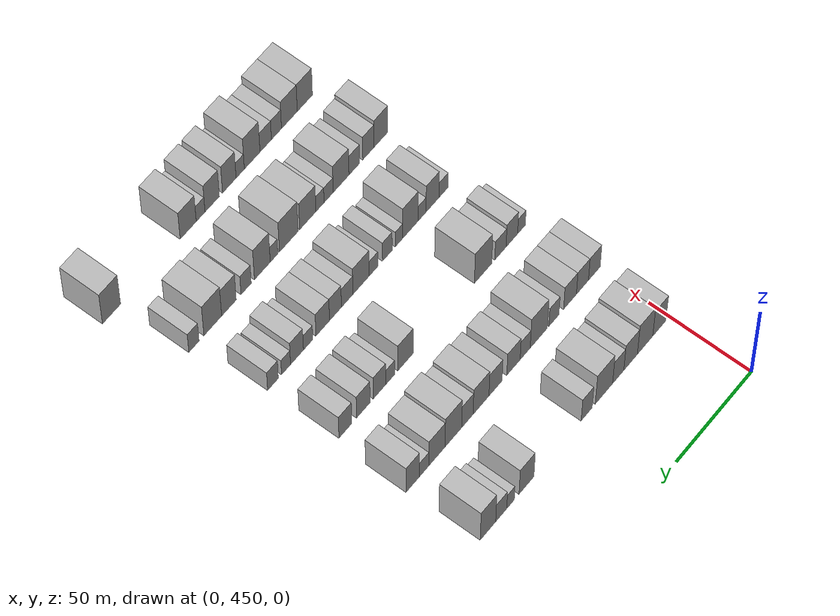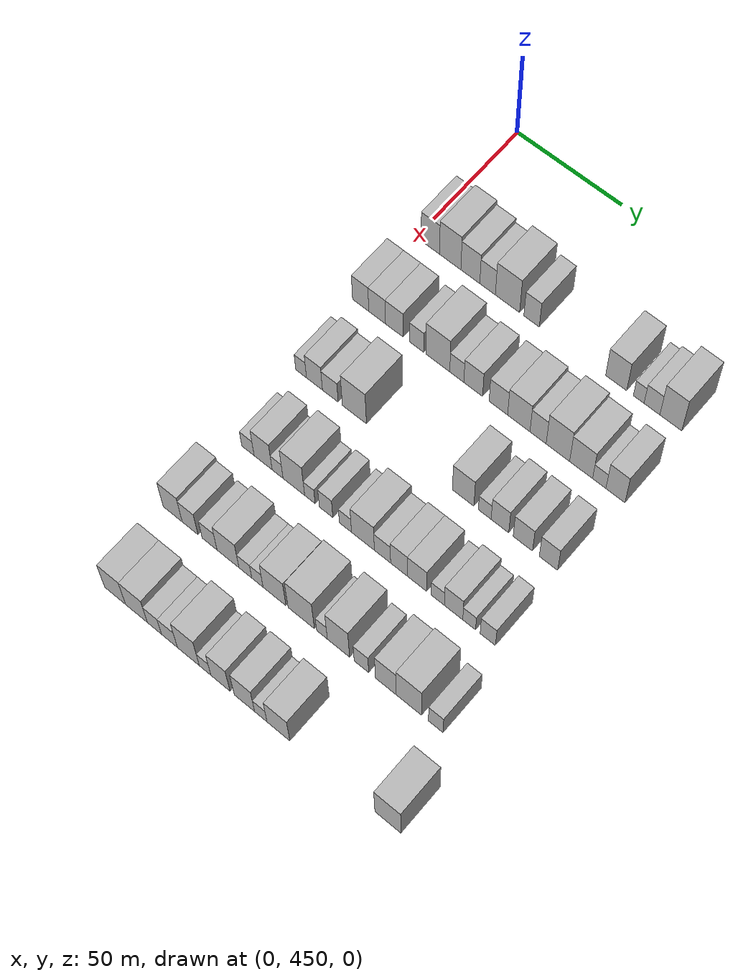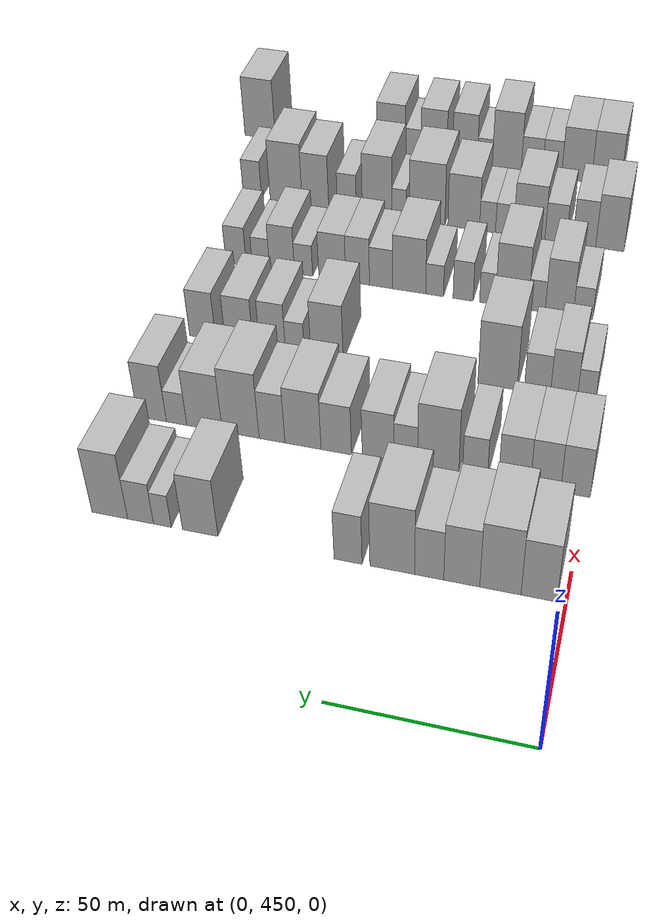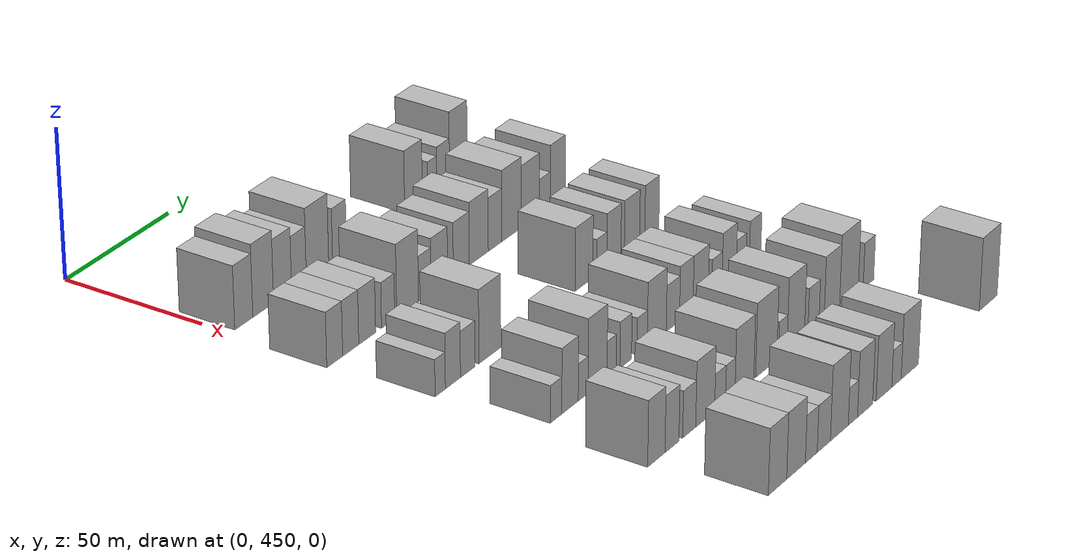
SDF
<sdf version="1.6">
 <world name="default">
  <model name="building_99">
   <static>1</static>
   <pose>50.0000 456.7760 0 0.000000 0.000000 0.000000</pose>
   <link name="link">
    <pose>0 0 10.50 0 0 0</pose>
    <collision name="collision"><geometry><box><size>20.0000 8.8065 21.0000</size></box></geometry></collision>
    <visual name="visual">
     <cast_shadows>0</cast_shadows>
     <geometry><box><size>20.0000 8.8065 21.0000</size></box></geometry>
     <material>
      <script>
       <uri>model://HANNAS_wall/materials/scripts</uri>
       <uri>model://HANNAS_wall/materials/textures</uri>
       <name>vrc/HANNAS_wall</name>
      </script>
     </material>
    </visual>
   </link>
  </model>
  <model name="building_100">
   <static>1</static>
   <pose>50.0000 466.2959 0 0.000000 0.000000 0.000000</pose>
   <link name="link">
    <pose>0 0 12.00 0 0 0</pose>
    <collision name="collision"><geometry><box><size>20.0000 10.2333 24.0000</size></box></geometry></collision>
    <visual name="visual">
     <cast_shadows>0</cast_shadows>
     <geometry><box><size>20.0000 10.2333 24.0000</size></box></geometry>
     <material>
      <script>
       <uri>model://HANNAS_wall/materials/scripts</uri>
       <uri>model://HANNAS_wall/materials/textures</uri>
       <name>vrc/HANNAS_wall</name>
      </script>
     </material>
    </visual>
   </link>
  </model>
  <model name="building_101">
   <static>1</static>
   <pose>50.0000 475.9107 0 0.000000 0.000000 0.000000</pose>
   <link name="link">
    <pose>0 0 10.50 0 0 0</pose>
    <collision name="collision"><geometry><box><size>20.0000 8.9962 21.0000</size></box></geometry></collision>
    <visual name="visual">
     <cast_shadows>0</cast_shadows>
     <geometry><box><size>20.0000 8.9962 21.0000</size></box></geometry>
     <material>
      <script>
       <uri>model://HANNAS_wall/materials/scripts</uri>
       <uri>model://HANNAS_wall/materials/textures</uri>
       <name>vrc/HANNAS_wall</name>
      </script>
     </material>
    </visual>
   </link>
  </model>
  <model name="building_102">
   <static>1</static>
   <pose>50.0000 484.0939 0 0.000000 0.000000 0.000000</pose>
   <link name="link">
    <pose>0 0 9.00 0 0 0</pose>
    <collision name="collision"><geometry><box><size>20.0000 7.3703 18.0000</size></box></geometry></collision>
    <visual name="visual">
     <cast_shadows>0</cast_shadows>
     <geometry><box><size>20.0000 7.3703 18.0000</size></box></geometry>
     <material>
      <script>
       <uri>model://HANNAS_wall/materials/scripts</uri>
       <uri>model://HANNAS_wall/materials/textures</uri>
       <name>vrc/HANNAS_wall</name>
      </script>
     </material>
    </visual>
   </link>
  </model>
  <model name="building_103">
   <static>1</static>
   <pose>50.0000 493.4817 0 0.000000 0.000000 0.000000</pose>
   <link name="link">
    <pose>0 0 12.00 0 0 0</pose>
    <collision name="collision"><geometry><box><size>20.0000 11.4052 24.0000</size></box></geometry></collision>
    <visual name="visual">
     <cast_shadows>0</cast_shadows>
     <geometry><box><size>20.0000 11.4052 24.0000</size></box></geometry>
     <material>
      <script>
       <uri>model://HANNAS_wall/materials/scripts</uri>
       <uri>model://HANNAS_wall/materials/textures</uri>
       <name>vrc/HANNAS_wall</name>
      </script>
     </material>
    </visual>
   </link>
  </model>
  <model name="building_104">
   <static>1</static>
   <pose>50.0000 504.7924 0 0.000000 0.000000 0.000000</pose>
   <link name="link">
    <pose>0 0 9.00 0 0 0</pose>
    <collision name="collision"><geometry><box><size>20.0000 7.2164 18.0000</size></box></geometry></collision>
    <visual name="visual">
     <cast_shadows>0</cast_shadows>
     <geometry><box><size>20.0000 7.2164 18.0000</size></box></geometry>
     <material>
      <script>
       <uri>model://HANNAS_wall/materials/scripts</uri>
       <uri>model://HANNAS_wall/materials/textures</uri>
       <name>vrc/HANNAS_wall</name>
      </script>
     </material>
    </visual>
   </link>
  </model>
  <model name="building_105">
   <static>1</static>
   <pose>50.0000 543.7644 0 0.000000 0.000000 0.000000</pose>
   <link name="link">
    <pose>0 0 10.50 0 0 0</pose>
    <collision name="collision"><geometry><box><size>20.0000 9.5758 21.0000</size></box></geometry></collision>
    <visual name="visual">
     <cast_shadows>0</cast_shadows>
     <geometry><box><size>20.0000 9.5758 21.0000</size></box></geometry>
     <material>
      <script>
       <uri>model://HANNAS_wall/materials/scripts</uri>
       <uri>model://HANNAS_wall/materials/textures</uri>
       <name>vrc/HANNAS_wall</name>
      </script>
     </material>
    </visual>
   </link>
  </model>
  <model name="building_106">
   <static>1</static>
   <pose>50.0000 553.9643 0 0.000000 0.000000 0.000000</pose>
   <link name="link">
    <pose>0 0 6.00 0 0 0</pose>
    <collision name="collision"><geometry><box><size>20.0000 4.8239 12.0000</size></box></geometry></collision>
    <visual name="visual">
     <cast_shadows>0</cast_shadows>
     <geometry><box><size>20.0000 4.8239 12.0000</size></box></geometry>
     <material>
      <script>
       <uri>model://HANNAS_wall/materials/scripts</uri>
       <uri>model://HANNAS_wall/materials/textures</uri>
       <name>vrc/HANNAS_wall</name>
      </script>
     </material>
    </visual>
   </link>
  </model>
  <model name="building_107">
   <static>1</static>
   <pose>50.0000 559.9140 0 0.000000 0.000000 0.000000</pose>
   <link name="link">
    <pose>0 0 7.50 0 0 0</pose>
    <collision name="collision"><geometry><box><size>20.0000 7.0755 15.0000</size></box></geometry></collision>
    <visual name="visual">
     <cast_shadows>0</cast_shadows>
     <geometry><box><size>20.0000 7.0755 15.0000</size></box></geometry>
     <material>
      <script>
       <uri>model://HANNAS_wall/materials/scripts</uri>
       <uri>model://HANNAS_wall/materials/textures</uri>
       <name>vrc/HANNAS_wall</name>
      </script>
     </material>
    </visual>
   </link>
  </model>
  <model name="building_108">
   <static>1</static>
   <pose>50.0000 568.3664 0 0.000000 0.000000 0.000000</pose>
   <link name="link">
    <pose>0 0 12.00 0 0 0</pose>
    <collision name="collision"><geometry><box><size>20.0000 9.8292 24.0000</size></box></geometry></collision>
    <visual name="visual">
     <cast_shadows>0</cast_shadows>
     <geometry><box><size>20.0000 9.8292 24.0000</size></box></geometry>
     <material>
      <script>
       <uri>model://HANNAS_wall/materials/scripts</uri>
       <uri>model://HANNAS_wall/materials/textures</uri>
       <name>vrc/HANNAS_wall</name>
      </script>
     </material>
    </visual>
   </link>
  </model>
  <model name="building_221">
   <static>1</static>
   <pose>85.0000 452.7552 0 0.000000 0.000000 0.000000</pose>
   <link name="link">
    <pose>0 0 9.00 0 0 0</pose>
    <collision name="collision"><geometry><box><size>20.0000 7.8220 18.0000</size></box></geometry></collision>
    <visual name="visual">
     <cast_shadows>0</cast_shadows>
     <geometry><box><size>20.0000 7.8220 18.0000</size></box></geometry>
     <material>
      <script>
       <uri>model://HANNAS_wall/materials/scripts</uri>
       <uri>model://HANNAS_wall/materials/textures</uri>
       <name>vrc/HANNAS_wall</name>
      </script>
     </material>
    </visual>
   </link>
  </model>
  <model name="building_222">
   <static>1</static>
   <pose>85.0000 460.6661 0 0.000000 0.000000 0.000000</pose>
   <link name="link">
    <pose>0 0 9.00 0 0 0</pose>
    <collision name="collision"><geometry><box><size>20.0000 7.9999 18.0000</size></box></geometry></collision>
    <visual name="visual">
     <cast_shadows>0</cast_shadows>
     <geometry><box><size>20.0000 7.9999 18.0000</size></box></geometry>
     <material>
      <script>
       <uri>model://HANNAS_wall/materials/scripts</uri>
       <uri>model://HANNAS_wall/materials/textures</uri>
       <name>vrc/HANNAS_wall</name>
      </script>
     </material>
    </visual>
   </link>
  </model>
  <model name="building_223">
   <static>1</static>
   <pose>85.0000 468.9051 0 0.000000 0.000000 0.000000</pose>
   <link name="link">
    <pose>0 0 9.00 0 0 0</pose>
    <collision name="collision"><geometry><box><size>20.0000 8.4780 18.0000</size></box></geometry></collision>
    <visual name="visual">
     <cast_shadows>0</cast_shadows>
     <geometry><box><size>20.0000 8.4780 18.0000</size></box></geometry>
     <material>
      <script>
       <uri>model://HANNAS_wall/materials/scripts</uri>
       <uri>model://HANNAS_wall/materials/textures</uri>
       <name>vrc/HANNAS_wall</name>
      </script>
     </material>
    </visual>
   </link>
  </model>
  <model name="building_224">
   <static>1</static>
   <pose>85.0000 479.5016 0 0.000000 0.000000 0.000000</pose>
   <link name="link">
    <pose>0 0 7.50 0 0 0</pose>
    <collision name="collision"><geometry><box><size>20.0000 6.7152 15.0000</size></box></geometry></collision>
    <visual name="visual">
     <cast_shadows>0</cast_shadows>
     <geometry><box><size>20.0000 6.7152 15.0000</size></box></geometry>
     <material>
      <script>
       <uri>model://HANNAS_wall/materials/scripts</uri>
       <uri>model://HANNAS_wall/materials/textures</uri>
       <name>vrc/HANNAS_wall</name>
      </script>
     </material>
    </visual>
   </link>
  </model>
  <model name="building_225">
   <static>1</static>
   <pose>85.0000 489.4619 0 0.000000 0.000000 0.000000</pose>
   <link name="link">
    <pose>0 0 12.00 0 0 0</pose>
    <collision name="collision"><geometry><box><size>20.0000 11.2054 24.0000</size></box></geometry></collision>
    <visual name="visual">
     <cast_shadows>0</cast_shadows>
     <geometry><box><size>20.0000 11.2054 24.0000</size></box></geometry>
     <material>
      <script>
       <uri>model://HANNAS_wall/materials/scripts</uri>
       <uri>model://HANNAS_wall/materials/textures</uri>
       <name>vrc/HANNAS_wall</name>
      </script>
     </material>
    </visual>
   </link>
  </model>
  <model name="building_226">
   <static>1</static>
   <pose>85.0000 498.3564 0 0.000000 0.000000 0.000000</pose>
   <link name="link">
    <pose>0 0 7.50 0 0 0</pose>
    <collision name="collision"><geometry><box><size>20.0000 6.5836 15.0000</size></box></geometry></collision>
    <visual name="visual">
     <cast_shadows>0</cast_shadows>
     <geometry><box><size>20.0000 6.5836 15.0000</size></box></geometry>
     <material>
      <script>
       <uri>model://HANNAS_wall/materials/scripts</uri>
       <uri>model://HANNAS_wall/materials/textures</uri>
       <name>vrc/HANNAS_wall</name>
      </script>
     </material>
    </visual>
   </link>
  </model>
  <model name="building_227">
   <static>1</static>
   <pose>85.0000 505.9894 0 0.000000 0.000000 0.000000</pose>
   <link name="link">
    <pose>0 0 9.00 0 0 0</pose>
    <collision name="collision"><geometry><box><size>20.0000 8.6823 18.0000</size></box></geometry></collision>
    <visual name="visual">
     <cast_shadows>0</cast_shadows>
     <geometry><box><size>20.0000 8.6823 18.0000</size></box></geometry>
     <material>
      <script>
       <uri>model://HANNAS_wall/materials/scripts</uri>
       <uri>model://HANNAS_wall/materials/textures</uri>
       <name>vrc/HANNAS_wall</name>
      </script>
     </material>
    </visual>
   </link>
  </model>
  <model name="building_228">
   <static>1</static>
   <pose>85.0000 517.5871 0 0.000000 0.000000 0.000000</pose>
   <link name="link">
    <pose>0 0 9.00 0 0 0</pose>
    <collision name="collision"><geometry><box><size>20.0000 8.5131 18.0000</size></box></geometry></collision>
    <visual name="visual">
     <cast_shadows>0</cast_shadows>
     <geometry><box><size>20.0000 8.5131 18.0000</size></box></geometry>
     <material>
      <script>
       <uri>model://HANNAS_wall/materials/scripts</uri>
       <uri>model://HANNAS_wall/materials/textures</uri>
       <name>vrc/HANNAS_wall</name>
      </script>
     </material>
    </visual>
   </link>
  </model>
  <model name="building_229">
   <static>1</static>
   <pose>85.0000 526.9511 0 0.000000 0.000000 0.000000</pose>
   <link name="link">
    <pose>0 0 10.50 0 0 0</pose>
    <collision name="collision"><geometry><box><size>20.0000 10.2149 21.0000</size></box></geometry></collision>
    <visual name="visual">
     <cast_shadows>0</cast_shadows>
     <geometry><box><size>20.0000 10.2149 21.0000</size></box></geometry>
     <material>
      <script>
       <uri>model://HANNAS_wall/materials/scripts</uri>
       <uri>model://HANNAS_wall/materials/textures</uri>
       <name>vrc/HANNAS_wall</name>
      </script>
     </material>
    </visual>
   </link>
  </model>
  <model name="building_230">
   <static>1</static>
   <pose>85.0000 535.7385 0 0.000000 0.000000 0.000000</pose>
   <link name="link">
    <pose>0 0 9.00 0 0 0</pose>
    <collision name="collision"><geometry><box><size>20.0000 7.3599 18.0000</size></box></geometry></collision>
    <visual name="visual">
     <cast_shadows>0</cast_shadows>
     <geometry><box><size>20.0000 7.3599 18.0000</size></box></geometry>
     <material>
      <script>
       <uri>model://HANNAS_wall/materials/scripts</uri>
       <uri>model://HANNAS_wall/materials/textures</uri>
       <name>vrc/HANNAS_wall</name>
      </script>
     </material>
    </visual>
   </link>
  </model>
  <model name="building_231">
   <static>1</static>
   <pose>85.0000 544.7317 0 0.000000 0.000000 0.000000</pose>
   <link name="link">
    <pose>0 0 12.00 0 0 0</pose>
    <collision name="collision"><geometry><box><size>20.0000 10.6266 24.0000</size></box></geometry></collision>
    <visual name="visual">
     <cast_shadows>0</cast_shadows>
     <geometry><box><size>20.0000 10.6266 24.0000</size></box></geometry>
     <material>
      <script>
       <uri>model://HANNAS_wall/materials/scripts</uri>
       <uri>model://HANNAS_wall/materials/textures</uri>
       <name>vrc/HANNAS_wall</name>
      </script>
     </material>
    </visual>
   </link>
  </model>
  <model name="building_232">
   <static>1</static>
   <pose>85.0000 555.1914 0 0.000000 0.000000 0.000000</pose>
   <link name="link">
    <pose>0 0 10.50 0 0 0</pose>
    <collision name="collision"><geometry><box><size>20.0000 10.2928 21.0000</size></box></geometry></collision>
    <visual name="visual">
     <cast_shadows>0</cast_shadows>
     <geometry><box><size>20.0000 10.2928 21.0000</size></box></geometry>
     <material>
      <script>
       <uri>model://HANNAS_wall/materials/scripts</uri>
       <uri>model://HANNAS_wall/materials/textures</uri>
       <name>vrc/HANNAS_wall</name>
      </script>
     </material>
    </visual>
   </link>
  </model>
  <model name="building_233">
   <static>1</static>
   <pose>85.0000 563.3037 0 0.000000 0.000000 0.000000</pose>
   <link name="link">
    <pose>0 0 6.00 0 0 0</pose>
    <collision name="collision"><geometry><box><size>20.0000 5.9319 12.0000</size></box></geometry></collision>
    <visual name="visual">
     <cast_shadows>0</cast_shadows>
     <geometry><box><size>20.0000 5.9319 12.0000</size></box></geometry>
     <material>
      <script>
       <uri>model://HANNAS_wall/materials/scripts</uri>
       <uri>model://HANNAS_wall/materials/textures</uri>
       <name>vrc/HANNAS_wall</name>
      </script>
     </material>
    </visual>
   </link>
  </model>
  <model name="building_234">
   <static>1</static>
   <pose>85.0000 570.5051 0 0.000000 0.000000 0.000000</pose>
   <link name="link">
    <pose>0 0 10.50 0 0 0</pose>
    <collision name="collision"><geometry><box><size>20.0000 8.4709 21.0000</size></box></geometry></collision>
    <visual name="visual">
     <cast_shadows>0</cast_shadows>
     <geometry><box><size>20.0000 8.4709 21.0000</size></box></geometry>
     <material>
      <script>
       <uri>model://HANNAS_wall/materials/scripts</uri>
       <uri>model://HANNAS_wall/materials/textures</uri>
       <name>vrc/HANNAS_wall</name>
      </script>
     </material>
    </visual>
   </link>
  </model>
  <model name="building_346">
   <static>1</static>
   <pose>120.0000 454.5012 0 0.000000 0.000000 0.000000</pose>
   <link name="link">
    <pose>0 0 6.00 0 0 0</pose>
    <collision name="collision"><geometry><box><size>20.0000 5.1360 12.0000</size></box></geometry></collision>
    <visual name="visual">
     <cast_shadows>0</cast_shadows>
     <geometry><box><size>20.0000 5.1360 12.0000</size></box></geometry>
     <material>
      <script>
       <uri>model://HANNAS_wall/materials/scripts</uri>
       <uri>model://HANNAS_wall/materials/textures</uri>
       <name>vrc/HANNAS_wall</name>
      </script>
     </material>
    </visual>
   </link>
  </model>
  <model name="building_347">
   <static>1</static>
   <pose>120.0000 460.8813 0 0.000000 0.000000 0.000000</pose>
   <link name="link">
    <pose>0 0 9.00 0 0 0</pose>
    <collision name="collision"><geometry><box><size>20.0000 7.6242 18.0000</size></box></geometry></collision>
    <visual name="visual">
     <cast_shadows>0</cast_shadows>
     <geometry><box><size>20.0000 7.6242 18.0000</size></box></geometry>
     <material>
      <script>
       <uri>model://HANNAS_wall/materials/scripts</uri>
       <uri>model://HANNAS_wall/materials/textures</uri>
       <name>vrc/HANNAS_wall</name>
      </script>
     </material>
    </visual>
   </link>
  </model>
  <model name="building_348">
   <static>1</static>
   <pose>120.0000 468.4223 0 0.000000 0.000000 0.000000</pose>
   <link name="link">
    <pose>0 0 7.50 0 0 0</pose>
    <collision name="collision"><geometry><box><size>20.0000 7.4577 15.0000</size></box></geometry></collision>
    <visual name="visual">
     <cast_shadows>0</cast_shadows>
     <geometry><box><size>20.0000 7.4577 15.0000</size></box></geometry>
     <material>
      <script>
       <uri>model://HANNAS_wall/materials/scripts</uri>
       <uri>model://HANNAS_wall/materials/textures</uri>
       <name>vrc/HANNAS_wall</name>
      </script>
     </material>
    </visual>
   </link>
  </model>
  <model name="building_349">
   <static>1</static>
   <pose>120.0000 479.8195 0 0.000000 0.000000 0.000000</pose>
   <link name="link">
    <pose>0 0 12.00 0 0 0</pose>
    <collision name="collision"><geometry><box><size>20.0000 11.3368 24.0000</size></box></geometry></collision>
    <visual name="visual">
     <cast_shadows>0</cast_shadows>
     <geometry><box><size>20.0000 11.3368 24.0000</size></box></geometry>
     <material>
      <script>
       <uri>model://HANNAS_wall/materials/scripts</uri>
       <uri>model://HANNAS_wall/materials/textures</uri>
       <name>vrc/HANNAS_wall</name>
      </script>
     </material>
    </visual>
   </link>
  </model>
  <model name="building_350">
   <static>1</static>
   <pose>120.0000 530.1203 0 0.000000 0.000000 0.000000</pose>
   <link name="link">
    <pose>0 0 10.50 0 0 0</pose>
    <collision name="collision"><geometry><box><size>20.0000 9.7549 21.0000</size></box></geometry></collision>
    <visual name="visual">
     <cast_shadows>0</cast_shadows>
     <geometry><box><size>20.0000 9.7549 21.0000</size></box></geometry>
     <material>
      <script>
       <uri>model://HANNAS_wall/materials/scripts</uri>
       <uri>model://HANNAS_wall/materials/textures</uri>
       <name>vrc/HANNAS_wall</name>
      </script>
     </material>
    </visual>
   </link>
  </model>
  <model name="building_351">
   <static>1</static>
   <pose>120.0000 539.8656 0 0.000000 0.000000 0.000000</pose>
   <link name="link">
    <pose>0 0 6.00 0 0 0</pose>
    <collision name="collision"><geometry><box><size>20.0000 5.7357 12.0000</size></box></geometry></collision>
    <visual name="visual">
     <cast_shadows>0</cast_shadows>
     <geometry><box><size>20.0000 5.7357 12.0000</size></box></geometry>
     <material>
      <script>
       <uri>model://HANNAS_wall/materials/scripts</uri>
       <uri>model://HANNAS_wall/materials/textures</uri>
       <name>vrc/HANNAS_wall</name>
      </script>
     </material>
    </visual>
   </link>
  </model>
  <model name="building_352">
   <static>1</static>
   <pose>120.0000 546.6891 0 0.000000 0.000000 0.000000</pose>
   <link name="link">
    <pose>0 0 9.00 0 0 0</pose>
    <collision name="collision"><geometry><box><size>20.0000 7.9112 18.0000</size></box></geometry></collision>
    <visual name="visual">
     <cast_shadows>0</cast_shadows>
     <geometry><box><size>20.0000 7.9112 18.0000</size></box></geometry>
     <material>
      <script>
       <uri>model://HANNAS_wall/materials/scripts</uri>
       <uri>model://HANNAS_wall/materials/textures</uri>
       <name>vrc/HANNAS_wall</name>
      </script>
     </material>
    </visual>
   </link>
  </model>
  <model name="building_353">
   <static>1</static>
   <pose>120.0000 556.9477 0 0.000000 0.000000 0.000000</pose>
   <link name="link">
    <pose>0 0 9.00 0 0 0</pose>
    <collision name="collision"><geometry><box><size>20.0000 8.6060 18.0000</size></box></geometry></collision>
    <visual name="visual">
     <cast_shadows>0</cast_shadows>
     <geometry><box><size>20.0000 8.6060 18.0000</size></box></geometry>
     <material>
      <script>
       <uri>model://HANNAS_wall/materials/scripts</uri>
       <uri>model://HANNAS_wall/materials/textures</uri>
       <name>vrc/HANNAS_wall</name>
      </script>
     </material>
    </visual>
   </link>
  </model>
  <model name="building_354">
   <static>1</static>
   <pose>120.0000 568.3053 0 0.000000 0.000000 0.000000</pose>
   <link name="link">
    <pose>0 0 9.00 0 0 0</pose>
    <collision name="collision"><geometry><box><size>20.0000 8.1092 18.0000</size></box></geometry></collision>
    <visual name="visual">
     <cast_shadows>0</cast_shadows>
     <geometry><box><size>20.0000 8.1092 18.0000</size></box></geometry>
     <material>
      <script>
       <uri>model://HANNAS_wall/materials/scripts</uri>
       <uri>model://HANNAS_wall/materials/textures</uri>
       <name>vrc/HANNAS_wall</name>
      </script>
     </material>
    </visual>
   </link>
  </model>
  <model name="building_465">
   <static>1</static>
   <pose>155.0000 460.1861 0 0.000000 0.000000 0.000000</pose>
   <link name="link">
    <pose>0 0 6.00 0 0 0</pose>
    <collision name="collision"><geometry><box><size>20.0000 5.8653 12.0000</size></box></geometry></collision>
    <visual name="visual">
     <cast_shadows>0</cast_shadows>
     <geometry><box><size>20.0000 5.8653 12.0000</size></box></geometry>
     <material>
      <script>
       <uri>model://HANNAS_wall/materials/scripts</uri>
       <uri>model://HANNAS_wall/materials/textures</uri>
       <name>vrc/HANNAS_wall</name>
      </script>
     </material>
    </visual>
   </link>
  </model>
  <model name="building_466">
   <static>1</static>
   <pose>155.0000 467.3884 0 0.000000 0.000000 0.000000</pose>
   <link name="link">
    <pose>0 0 10.50 0 0 0</pose>
    <collision name="collision"><geometry><box><size>20.0000 8.5393 21.0000</size></box></geometry></collision>
    <visual name="visual">
     <cast_shadows>0</cast_shadows>
     <geometry><box><size>20.0000 8.5393 21.0000</size></box></geometry>
     <material>
      <script>
       <uri>model://HANNAS_wall/materials/scripts</uri>
       <uri>model://HANNAS_wall/materials/textures</uri>
       <name>vrc/HANNAS_wall</name>
      </script>
     </material>
    </visual>
   </link>
  </model>
  <model name="building_467">
   <static>1</static>
   <pose>155.0000 474.2305 0 0.000000 0.000000 0.000000</pose>
   <link name="link">
    <pose>0 0 6.00 0 0 0</pose>
    <collision name="collision"><geometry><box><size>20.0000 5.1447 12.0000</size></box></geometry></collision>
    <visual name="visual">
     <cast_shadows>0</cast_shadows>
     <geometry><box><size>20.0000 5.1447 12.0000</size></box></geometry>
     <material>
      <script>
       <uri>model://HANNAS_wall/materials/scripts</uri>
       <uri>model://HANNAS_wall/materials/textures</uri>
       <name>vrc/HANNAS_wall</name>
      </script>
     </material>
    </visual>
   </link>
  </model>
  <model name="building_468">
   <static>1</static>
   <pose>155.0000 481.8606 0 0.000000 0.000000 0.000000</pose>
   <link name="link">
    <pose>0 0 12.00 0 0 0</pose>
    <collision name="collision"><geometry><box><size>20.0000 10.1156 24.0000</size></box></geometry></collision>
    <visual name="visual">
     <cast_shadows>0</cast_shadows>
     <geometry><box><size>20.0000 10.1156 24.0000</size></box></geometry>
     <material>
      <script>
       <uri>model://HANNAS_wall/materials/scripts</uri>
       <uri>model://HANNAS_wall/materials/textures</uri>
       <name>vrc/HANNAS_wall</name>
      </script>
     </material>
    </visual>
   </link>
  </model>
  <model name="building_469">
   <static>1</static>
   <pose>155.0000 489.3486 0 0.000000 0.000000 0.000000</pose>
   <link name="link">
    <pose>0 0 6.00 0 0 0</pose>
    <collision name="collision"><geometry><box><size>20.0000 4.8604 12.0000</size></box></geometry></collision>
    <visual name="visual">
     <cast_shadows>0</cast_shadows>
     <geometry><box><size>20.0000 4.8604 12.0000</size></box></geometry>
     <material>
      <script>
       <uri>model://HANNAS_wall/materials/scripts</uri>
       <uri>model://HANNAS_wall/materials/textures</uri>
       <name>vrc/HANNAS_wall</name>
      </script>
     </material>
    </visual>
   </link>
  </model>
  <model name="building_470">
   <static>1</static>
   <pose>155.0000 496.9008 0 0.000000 0.000000 0.000000</pose>
   <link name="link">
    <pose>0 0 7.50 0 0 0</pose>
    <collision name="collision"><geometry><box><size>20.0000 6.2440 15.0000</size></box></geometry></collision>
    <visual name="visual">
     <cast_shadows>0</cast_shadows>
     <geometry><box><size>20.0000 6.2440 15.0000</size></box></geometry>
     <material>
      <script>
       <uri>model://HANNAS_wall/materials/scripts</uri>
       <uri>model://HANNAS_wall/materials/textures</uri>
       <name>vrc/HANNAS_wall</name>
      </script>
     </material>
    </visual>
   </link>
  </model>
  <model name="building_471">
   <static>1</static>
   <pose>155.0000 505.8105 0 0.000000 0.000000 0.000000</pose>
   <link name="link">
    <pose>0 0 6.00 0 0 0</pose>
    <collision name="collision"><geometry><box><size>20.0000 5.5756 12.0000</size></box></geometry></collision>
    <visual name="visual">
     <cast_shadows>0</cast_shadows>
     <geometry><box><size>20.0000 5.5756 12.0000</size></box></geometry>
     <material>
      <script>
       <uri>model://HANNAS_wall/materials/scripts</uri>
       <uri>model://HANNAS_wall/materials/textures</uri>
       <name>vrc/HANNAS_wall</name>
      </script>
     </material>
    </visual>
   </link>
  </model>
  <model name="building_472">
   <static>1</static>
   <pose>155.0000 513.8288 0 0.000000 0.000000 0.000000</pose>
   <link name="link">
    <pose>0 0 10.50 0 0 0</pose>
    <collision name="collision"><geometry><box><size>20.0000 10.4610 21.0000</size></box></geometry></collision>
    <visual name="visual">
     <cast_shadows>0</cast_shadows>
     <geometry><box><size>20.0000 10.4610 21.0000</size></box></geometry>
     <material>
      <script>
       <uri>model://HANNAS_wall/materials/scripts</uri>
       <uri>model://HANNAS_wall/materials/textures</uri>
       <name>vrc/HANNAS_wall</name>
      </script>
     </material>
    </visual>
   </link>
  </model>
  <model name="building_473">
   <static>1</static>
   <pose>155.0000 522.7509 0 0.000000 0.000000 0.000000</pose>
   <link name="link">
    <pose>0 0 7.50 0 0 0</pose>
    <collision name="collision"><geometry><box><size>20.0000 7.3832 15.0000</size></box></geometry></collision>
    <visual name="visual">
     <cast_shadows>0</cast_shadows>
     <geometry><box><size>20.0000 7.3832 15.0000</size></box></geometry>
     <material>
      <script>
       <uri>model://HANNAS_wall/materials/scripts</uri>
       <uri>model://HANNAS_wall/materials/textures</uri>
       <name>vrc/HANNAS_wall</name>
      </script>
     </material>
    </visual>
   </link>
  </model>
  <model name="building_474">
   <static>1</static>
   <pose>155.0000 530.2418 0 0.000000 0.000000 0.000000</pose>
   <link name="link">
    <pose>0 0 9.00 0 0 0</pose>
    <collision name="collision"><geometry><box><size>20.0000 7.5985 18.0000</size></box></geometry></collision>
    <visual name="visual">
     <cast_shadows>0</cast_shadows>
     <geometry><box><size>20.0000 7.5985 18.0000</size></box></geometry>
     <material>
      <script>
       <uri>model://HANNAS_wall/materials/scripts</uri>
       <uri>model://HANNAS_wall/materials/textures</uri>
       <name>vrc/HANNAS_wall</name>
      </script>
     </material>
    </visual>
   </link>
  </model>
  <model name="building_475">
   <static>1</static>
   <pose>155.0000 538.3699 0 0.000000 0.000000 0.000000</pose>
   <link name="link">
    <pose>0 0 9.00 0 0 0</pose>
    <collision name="collision"><geometry><box><size>20.0000 8.6576 18.0000</size></box></geometry></collision>
    <visual name="visual">
     <cast_shadows>0</cast_shadows>
     <geometry><box><size>20.0000 8.6576 18.0000</size></box></geometry>
     <material>
      <script>
       <uri>model://HANNAS_wall/materials/scripts</uri>
       <uri>model://HANNAS_wall/materials/textures</uri>
       <name>vrc/HANNAS_wall</name>
      </script>
     </material>
    </visual>
   </link>
  </model>
  <model name="building_476">
   <static>1</static>
   <pose>155.0000 547.6422 0 0.000000 0.000000 0.000000</pose>
   <link name="link">
    <pose>0 0 6.00 0 0 0</pose>
    <collision name="collision"><geometry><box><size>20.0000 5.8870 12.0000</size></box></geometry></collision>
    <visual name="visual">
     <cast_shadows>0</cast_shadows>
     <geometry><box><size>20.0000 5.8870 12.0000</size></box></geometry>
     <material>
      <script>
       <uri>model://HANNAS_wall/materials/scripts</uri>
       <uri>model://HANNAS_wall/materials/textures</uri>
       <name>vrc/HANNAS_wall</name>
      </script>
     </material>
    </visual>
   </link>
  </model>
  <model name="building_477">
   <static>1</static>
   <pose>155.0000 554.6665 0 0.000000 0.000000 0.000000</pose>
   <link name="link">
    <pose>0 0 9.00 0 0 0</pose>
    <collision name="collision"><geometry><box><size>20.0000 8.1617 18.0000</size></box></geometry></collision>
    <visual name="visual">
     <cast_shadows>0</cast_shadows>
     <geometry><box><size>20.0000 8.1617 18.0000</size></box></geometry>
     <material>
      <script>
       <uri>model://HANNAS_wall/materials/scripts</uri>
       <uri>model://HANNAS_wall/materials/textures</uri>
       <name>vrc/HANNAS_wall</name>
      </script>
     </material>
    </visual>
   </link>
  </model>
  <model name="building_478">
   <static>1</static>
   <pose>155.0000 561.5774 0 0.000000 0.000000 0.000000</pose>
   <link name="link">
    <pose>0 0 6.00 0 0 0</pose>
    <collision name="collision"><geometry><box><size>20.0000 5.6600 12.0000</size></box></geometry></collision>
    <visual name="visual">
     <cast_shadows>0</cast_shadows>
     <geometry><box><size>20.0000 5.6600 12.0000</size></box></geometry>
     <material>
      <script>
       <uri>model://HANNAS_wall/materials/scripts</uri>
       <uri>model://HANNAS_wall/materials/textures</uri>
       <name>vrc/HANNAS_wall</name>
      </script>
     </material>
    </visual>
   </link>
  </model>
  <model name="building_479">
   <static>1</static>
   <pose>155.0000 569.7784 0 0.000000 0.000000 0.000000</pose>
   <link name="link">
    <pose>0 0 7.50 0 0 0</pose>
    <collision name="collision"><geometry><box><size>20.0000 6.7419 15.0000</size></box></geometry></collision>
    <visual name="visual">
     <cast_shadows>0</cast_shadows>
     <geometry><box><size>20.0000 6.7419 15.0000</size></box></geometry>
     <material>
      <script>
       <uri>model://HANNAS_wall/materials/scripts</uri>
       <uri>model://HANNAS_wall/materials/textures</uri>
       <name>vrc/HANNAS_wall</name>
      </script>
     </material>
    </visual>
   </link>
  </model>
  <model name="building_592">
   <static>1</static>
   <pose>190.0000 456.2883 0 0.000000 0.000000 0.000000</pose>
   <link name="link">
    <pose>0 0 10.50 0 0 0</pose>
    <collision name="collision"><geometry><box><size>20.0000 9.0553 21.0000</size></box></geometry></collision>
    <visual name="visual">
     <cast_shadows>0</cast_shadows>
     <geometry><box><size>20.0000 9.0553 21.0000</size></box></geometry>
     <material>
      <script>
       <uri>model://HANNAS_wall/materials/scripts</uri>
       <uri>model://HANNAS_wall/materials/textures</uri>
       <name>vrc/HANNAS_wall</name>
      </script>
     </material>
    </visual>
   </link>
  </model>
  <model name="building_593">
   <static>1</static>
   <pose>190.0000 464.5201 0 0.000000 0.000000 0.000000</pose>
   <link name="link">
    <pose>0 0 9.00 0 0 0</pose>
    <collision name="collision"><geometry><box><size>20.0000 7.4084 18.0000</size></box></geometry></collision>
    <visual name="visual">
     <cast_shadows>0</cast_shadows>
     <geometry><box><size>20.0000 7.4084 18.0000</size></box></geometry>
     <material>
      <script>
       <uri>model://HANNAS_wall/materials/scripts</uri>
       <uri>model://HANNAS_wall/materials/textures</uri>
       <name>vrc/HANNAS_wall</name>
      </script>
     </material>
    </visual>
   </link>
  </model>
  <model name="building_594">
   <static>1</static>
   <pose>190.0000 473.7101 0 0.000000 0.000000 0.000000</pose>
   <link name="link">
    <pose>0 0 7.50 0 0 0</pose>
    <collision name="collision"><geometry><box><size>20.0000 6.9715 15.0000</size></box></geometry></collision>
    <visual name="visual">
     <cast_shadows>0</cast_shadows>
     <geometry><box><size>20.0000 6.9715 15.0000</size></box></geometry>
     <material>
      <script>
       <uri>model://HANNAS_wall/materials/scripts</uri>
       <uri>model://HANNAS_wall/materials/textures</uri>
       <name>vrc/HANNAS_wall</name>
      </script>
     </material>
    </visual>
   </link>
  </model>
  <model name="building_595">
   <static>1</static>
   <pose>190.0000 482.3155 0 0.000000 0.000000 0.000000</pose>
   <link name="link">
    <pose>0 0 10.50 0 0 0</pose>
    <collision name="collision"><geometry><box><size>20.0000 10.2394 21.0000</size></box></geometry></collision>
    <visual name="visual">
     <cast_shadows>0</cast_shadows>
     <geometry><box><size>20.0000 10.2394 21.0000</size></box></geometry>
     <material>
      <script>
       <uri>model://HANNAS_wall/materials/scripts</uri>
       <uri>model://HANNAS_wall/materials/textures</uri>
       <name>vrc/HANNAS_wall</name>
      </script>
     </material>
    </visual>
   </link>
  </model>
  <model name="building_596">
   <static>1</static>
   <pose>190.0000 490.3928 0 0.000000 0.000000 0.000000</pose>
   <link name="link">
    <pose>0 0 6.00 0 0 0</pose>
    <collision name="collision"><geometry><box><size>20.0000 5.9152 12.0000</size></box></geometry></collision>
    <visual name="visual">
     <cast_shadows>0</cast_shadows>
     <geometry><box><size>20.0000 5.9152 12.0000</size></box></geometry>
     <material>
      <script>
       <uri>model://HANNAS_wall/materials/scripts</uri>
       <uri>model://HANNAS_wall/materials/textures</uri>
       <name>vrc/HANNAS_wall</name>
      </script>
     </material>
    </visual>
   </link>
  </model>
  <model name="building_597">
   <static>1</static>
   <pose>190.0000 495.9743 0 0.000000 0.000000 0.000000</pose>
   <link name="link">
    <pose>0 0 6.00 0 0 0</pose>
    <collision name="collision"><geometry><box><size>20.0000 5.2478 12.0000</size></box></geometry></collision>
    <visual name="visual">
     <cast_shadows>0</cast_shadows>
     <geometry><box><size>20.0000 5.2478 12.0000</size></box></geometry>
     <material>
      <script>
       <uri>model://HANNAS_wall/materials/scripts</uri>
       <uri>model://HANNAS_wall/materials/textures</uri>
       <name>vrc/HANNAS_wall</name>
      </script>
     </material>
    </visual>
   </link>
  </model>
  <model name="building_598">
   <static>1</static>
   <pose>190.0000 503.8369 0 0.000000 0.000000 0.000000</pose>
   <link name="link">
    <pose>0 0 10.50 0 0 0</pose>
    <collision name="collision"><geometry><box><size>20.0000 10.4774 21.0000</size></box></geometry></collision>
    <visual name="visual">
     <cast_shadows>0</cast_shadows>
     <geometry><box><size>20.0000 10.4774 21.0000</size></box></geometry>
     <material>
      <script>
       <uri>model://HANNAS_wall/materials/scripts</uri>
       <uri>model://HANNAS_wall/materials/textures</uri>
       <name>vrc/HANNAS_wall</name>
      </script>
     </material>
    </visual>
   </link>
  </model>
  <model name="building_599">
   <static>1</static>
   <pose>190.0000 516.0566 0 0.000000 0.000000 0.000000</pose>
   <link name="link">
    <pose>0 0 12.00 0 0 0</pose>
    <collision name="collision"><geometry><box><size>20.0000 11.9620 24.0000</size></box></geometry></collision>
    <visual name="visual">
     <cast_shadows>0</cast_shadows>
     <geometry><box><size>20.0000 11.9620 24.0000</size></box></geometry>
     <material>
      <script>
       <uri>model://HANNAS_wall/materials/scripts</uri>
       <uri>model://HANNAS_wall/materials/textures</uri>
       <name>vrc/HANNAS_wall</name>
      </script>
     </material>
    </visual>
   </link>
  </model>
  <model name="building_600">
   <static>1</static>
   <pose>190.0000 525.4561 0 0.000000 0.000000 0.000000</pose>
   <link name="link">
    <pose>0 0 6.00 0 0 0</pose>
    <collision name="collision"><geometry><box><size>20.0000 4.8369 12.0000</size></box></geometry></collision>
    <visual name="visual">
     <cast_shadows>0</cast_shadows>
     <geometry><box><size>20.0000 4.8369 12.0000</size></box></geometry>
     <material>
      <script>
       <uri>model://HANNAS_wall/materials/scripts</uri>
       <uri>model://HANNAS_wall/materials/textures</uri>
       <name>vrc/HANNAS_wall</name>
      </script>
     </material>
    </visual>
   </link>
  </model>
  <model name="building_601">
   <static>1</static>
   <pose>190.0000 532.8900 0 0.000000 0.000000 0.000000</pose>
   <link name="link">
    <pose>0 0 12.00 0 0 0</pose>
    <collision name="collision"><geometry><box><size>20.0000 10.0309 24.0000</size></box></geometry></collision>
    <visual name="visual">
     <cast_shadows>0</cast_shadows>
     <geometry><box><size>20.0000 10.0309 24.0000</size></box></geometry>
     <material>
      <script>
       <uri>model://HANNAS_wall/materials/scripts</uri>
       <uri>model://HANNAS_wall/materials/textures</uri>
       <name>vrc/HANNAS_wall</name>
      </script>
     </material>
    </visual>
   </link>
  </model>
  <model name="building_602">
   <static>1</static>
   <pose>190.0000 543.1525 0 0.000000 0.000000 0.000000</pose>
   <link name="link">
    <pose>0 0 7.50 0 0 0</pose>
    <collision name="collision"><geometry><box><size>20.0000 6.4941 15.0000</size></box></geometry></collision>
    <visual name="visual">
     <cast_shadows>0</cast_shadows>
     <geometry><box><size>20.0000 6.4941 15.0000</size></box></geometry>
     <material>
      <script>
       <uri>model://HANNAS_wall/materials/scripts</uri>
       <uri>model://HANNAS_wall/materials/textures</uri>
       <name>vrc/HANNAS_wall</name>
      </script>
     </material>
    </visual>
   </link>
  </model>
  <model name="building_603">
   <static>1</static>
   <pose>190.0000 553.9833 0 0.000000 0.000000 0.000000</pose>
   <link name="link">
    <pose>0 0 10.50 0 0 0</pose>
    <collision name="collision"><geometry><box><size>20.0000 9.1675 21.0000</size></box></geometry></collision>
    <visual name="visual">
     <cast_shadows>0</cast_shadows>
     <geometry><box><size>20.0000 9.1675 21.0000</size></box></geometry>
     <material>
      <script>
       <uri>model://HANNAS_wall/materials/scripts</uri>
       <uri>model://HANNAS_wall/materials/textures</uri>
       <name>vrc/HANNAS_wall</name>
      </script>
     </material>
    </visual>
   </link>
  </model>
  <model name="building_604">
   <static>1</static>
   <pose>190.0000 564.1342 0 0.000000 0.000000 0.000000</pose>
   <link name="link">
    <pose>0 0 12.00 0 0 0</pose>
    <collision name="collision"><geometry><box><size>20.0000 11.1342 24.0000</size></box></geometry></collision>
    <visual name="visual">
     <cast_shadows>0</cast_shadows>
     <geometry><box><size>20.0000 11.1342 24.0000</size></box></geometry>
     <material>
      <script>
       <uri>model://HANNAS_wall/materials/scripts</uri>
       <uri>model://HANNAS_wall/materials/textures</uri>
       <name>vrc/HANNAS_wall</name>
      </script>
     </material>
    </visual>
   </link>
  </model>
  <model name="building_605">
   <static>1</static>
   <pose>190.0000 575.9013 0 0.000000 0.000000 0.000000</pose>
   <link name="link">
    <pose>0 0 7.50 0 0 0</pose>
    <collision name="collision"><geometry><box><size>20.0000 6.4000 15.0000</size></box></geometry></collision>
    <visual name="visual">
     <cast_shadows>0</cast_shadows>
     <geometry><box><size>20.0000 6.4000 15.0000</size></box></geometry>
     <material>
      <script>
       <uri>model://HANNAS_wall/materials/scripts</uri>
       <uri>model://HANNAS_wall/materials/textures</uri>
       <name>vrc/HANNAS_wall</name>
      </script>
     </material>
    </visual>
   </link>
  </model>
  <model name="building_718">
   <static>1</static>
   <pose>225.0000 461.7675 0 0.000000 0.000000 0.000000</pose>
   <link name="link">
    <pose>0 0 10.50 0 0 0</pose>
    <collision name="collision"><geometry><box><size>20.0000 9.9359 21.0000</size></box></geometry></collision>
    <visual name="visual">
     <cast_shadows>0</cast_shadows>
     <geometry><box><size>20.0000 9.9359 21.0000</size></box></geometry>
     <material>
      <script>
       <uri>model://HANNAS_wall/materials/scripts</uri>
       <uri>model://HANNAS_wall/materials/textures</uri>
       <name>vrc/HANNAS_wall</name>
      </script>
     </material>
    </visual>
   </link>
  </model>
  <model name="building_719">
   <static>1</static>
   <pose>225.0000 471.8527 0 0.000000 0.000000 0.000000</pose>
   <link name="link">
    <pose>0 0 10.50 0 0 0</pose>
    <collision name="collision"><geometry><box><size>20.0000 10.2344 21.0000</size></box></geometry></collision>
    <visual name="visual">
     <cast_shadows>0</cast_shadows>
     <geometry><box><size>20.0000 10.2344 21.0000</size></box></geometry>
     <material>
      <script>
       <uri>model://HANNAS_wall/materials/scripts</uri>
       <uri>model://HANNAS_wall/materials/textures</uri>
       <name>vrc/HANNAS_wall</name>
      </script>
     </material>
    </visual>
   </link>
  </model>
  <model name="building_720">
   <static>1</static>
   <pose>225.0000 480.2432 0 0.000000 0.000000 0.000000</pose>
   <link name="link">
    <pose>0 0 7.50 0 0 0</pose>
    <collision name="collision"><geometry><box><size>20.0000 6.5466 15.0000</size></box></geometry></collision>
    <visual name="visual">
     <cast_shadows>0</cast_shadows>
     <geometry><box><size>20.0000 6.5466 15.0000</size></box></geometry>
     <material>
      <script>
       <uri>model://HANNAS_wall/materials/scripts</uri>
       <uri>model://HANNAS_wall/materials/textures</uri>
       <name>vrc/HANNAS_wall</name>
      </script>
     </material>
    </visual>
   </link>
  </model>
  <model name="building_721">
   <static>1</static>
   <pose>225.0000 487.1961 0 0.000000 0.000000 0.000000</pose>
   <link name="link">
    <pose>0 0 7.50 0 0 0</pose>
    <collision name="collision"><geometry><box><size>20.0000 7.3592 15.0000</size></box></geometry></collision>
    <visual name="visual">
     <cast_shadows>0</cast_shadows>
     <geometry><box><size>20.0000 7.3592 15.0000</size></box></geometry>
     <material>
      <script>
       <uri>model://HANNAS_wall/materials/scripts</uri>
       <uri>model://HANNAS_wall/materials/textures</uri>
       <name>vrc/HANNAS_wall</name>
      </script>
     </material>
    </visual>
   </link>
  </model>
  <model name="building_722">
   <static>1</static>
   <pose>225.0000 495.9118 0 0.000000 0.000000 0.000000</pose>
   <link name="link">
    <pose>0 0 12.00 0 0 0</pose>
    <collision name="collision"><geometry><box><size>20.0000 10.0722 24.0000</size></box></geometry></collision>
    <visual name="visual">
     <cast_shadows>0</cast_shadows>
     <geometry><box><size>20.0000 10.0722 24.0000</size></box></geometry>
     <material>
      <script>
       <uri>model://HANNAS_wall/materials/scripts</uri>
       <uri>model://HANNAS_wall/materials/textures</uri>
       <name>vrc/HANNAS_wall</name>
      </script>
     </material>
    </visual>
   </link>
  </model>
  <model name="building_723">
   <static>1</static>
   <pose>225.0000 503.5835 0 0.000000 0.000000 0.000000</pose>
   <link name="link">
    <pose>0 0 6.00 0 0 0</pose>
    <collision name="collision"><geometry><box><size>20.0000 5.2712 12.0000</size></box></geometry></collision>
    <visual name="visual">
     <cast_shadows>0</cast_shadows>
     <geometry><box><size>20.0000 5.2712 12.0000</size></box></geometry>
     <material>
      <script>
       <uri>model://HANNAS_wall/materials/scripts</uri>
       <uri>model://HANNAS_wall/materials/textures</uri>
       <name>vrc/HANNAS_wall</name>
      </script>
     </material>
    </visual>
   </link>
  </model>
  <model name="building_724">
   <static>1</static>
   <pose>225.0000 510.5579 0 0.000000 0.000000 0.000000</pose>
   <link name="link">
    <pose>0 0 10.50 0 0 0</pose>
    <collision name="collision"><geometry><box><size>20.0000 8.6776 21.0000</size></box></geometry></collision>
    <visual name="visual">
     <cast_shadows>0</cast_shadows>
     <geometry><box><size>20.0000 8.6776 21.0000</size></box></geometry>
     <material>
      <script>
       <uri>model://HANNAS_wall/materials/scripts</uri>
       <uri>model://HANNAS_wall/materials/textures</uri>
       <name>vrc/HANNAS_wall</name>
      </script>
     </material>
    </visual>
   </link>
  </model>
  <model name="building_725">
   <static>1</static>
   <pose>225.0000 521.4655 0 0.000000 0.000000 0.000000</pose>
   <link name="link">
    <pose>0 0 10.50 0 0 0</pose>
    <collision name="collision"><geometry><box><size>20.0000 9.1376 21.0000</size></box></geometry></collision>
    <visual name="visual">
     <cast_shadows>0</cast_shadows>
     <geometry><box><size>20.0000 9.1376 21.0000</size></box></geometry>
     <material>
      <script>
       <uri>model://HANNAS_wall/materials/scripts</uri>
       <uri>model://HANNAS_wall/materials/textures</uri>
       <name>vrc/HANNAS_wall</name>
      </script>
     </material>
    </visual>
   </link>
  </model>
  <model name="building_726">
   <static>1</static>
   <pose>225.0000 528.8082 0 0.000000 0.000000 0.000000</pose>
   <link name="link">
    <pose>0 0 6.00 0 0 0</pose>
    <collision name="collision"><geometry><box><size>20.0000 5.5477 12.0000</size></box></geometry></collision>
    <visual name="visual">
     <cast_shadows>0</cast_shadows>
     <geometry><box><size>20.0000 5.5477 12.0000</size></box></geometry>
     <material>
      <script>
       <uri>model://HANNAS_wall/materials/scripts</uri>
       <uri>model://HANNAS_wall/materials/textures</uri>
       <name>vrc/HANNAS_wall</name>
      </script>
     </material>
    </visual>
   </link>
  </model>
  <model name="building_727">
   <static>1</static>
   <pose>225.0000 536.6778 0 0.000000 0.000000 0.000000</pose>
   <link name="link">
    <pose>0 0 10.50 0 0 0</pose>
    <collision name="collision"><geometry><box><size>20.0000 10.1914 21.0000</size></box></geometry></collision>
    <visual name="visual">
     <cast_shadows>0</cast_shadows>
     <geometry><box><size>20.0000 10.1914 21.0000</size></box></geometry>
     <material>
      <script>
       <uri>model://HANNAS_wall/materials/scripts</uri>
       <uri>model://HANNAS_wall/materials/textures</uri>
       <name>vrc/HANNAS_wall</name>
      </script>
     </material>
    </visual>
   </link>
  </model>
  <model name="building_728">
   <static>1</static>
   <pose>225.0000 584.6156 0 0.000000 0.000000 0.000000</pose>
   <link name="link">
    <pose>0 0 12.00 0 0 0</pose>
    <collision name="collision"><geometry><box><size>20.0000 11.2281 24.0000</size></box></geometry></collision>
    <visual name="visual">
     <cast_shadows>0</cast_shadows>
     <geometry><box><size>20.0000 11.2281 24.0000</size></box></geometry>
     <material>
      <script>
       <uri>model://HANNAS_wall/materials/scripts</uri>
       <uri>model://HANNAS_wall/materials/textures</uri>
       <name>vrc/HANNAS_wall</name>
      </script>
     </material>
    </visual>
   </link>
  </model>
 </world>
</sdf>
